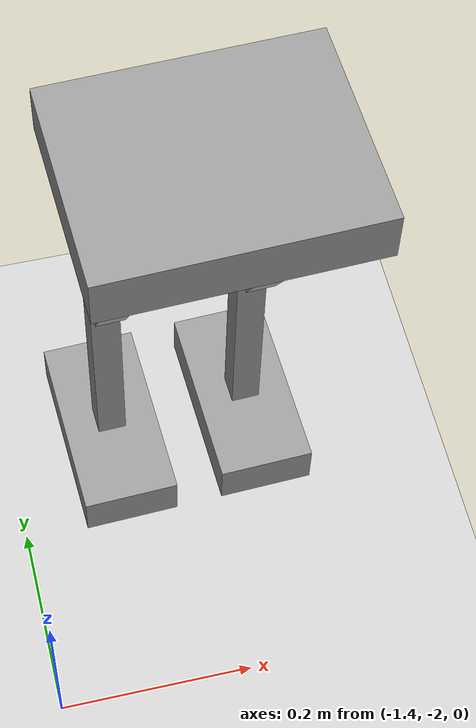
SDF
<sdf version="1.6">
 <world name="default">
  <model name="ground_plane">
   <static>1</static>
   <link name="link">
    <collision name="collision">
     <geometry><plane><normal>0 0 1</normal><size>100 100</size></plane></geometry>
     <surface><friction><ode><mu>100</mu><mu2>50</mu2></ode></friction></surface>
    </collision>
    <visual name="visual">
     <cast_shadows>0</cast_shadows>
     <geometry><plane><normal>0 0 1</normal><size>100 100</size></plane></geometry>
     <material>
      <script><uri>file://media/materials/scripts/gazebo.material</uri><name>Gazebo/Grey</name></script>
     </material>
    </visual>
   </link>
  </model>
  <model name="HumonoidRobot_3">
   <link name="link_0">
    <pose>-0.075081 0.045022 -0.236474 0 -0 0</pose>
    <inertial>
     <mass>1</mass>
     <inertia>
      <ixx>0.166667</ixx>
      <ixy>0</ixy>
      <ixz>0</ixz>
      <iyy>0.166667</iyy>
      <iyz>0</iyz>
      <izz>0.166667</izz>
     </inertia>
    </inertial>
    <visual name="visual">
     <geometry><box><size>0.1 0.2 0.05</size></box></geometry>
     <material>
      <lighting>1</lighting>
      <script><uri>file://media/materials/scripts/gazebo.material</uri><name>Gazebo/Grey</name></script>
      <shader type="pixel"><normal_map>__default__</normal_map></shader>
      <ambient>0.3 0.3 0.3 1</ambient>
      <diffuse>0.7 0.7 0.7 1</diffuse>
      <specular>0.01 0.01 0.01 1</specular>
      <emissive>0 0 0 1</emissive>
     </material>
    </visual>
    <collision name="collision">
     <geometry><box><size>0.1 0.2 0.05</size></box></geometry>
     <surface>
      <friction>
       <ode><mu>1</mu><mu2>1</mu2><fdir1>0 0 0</fdir1><slip1>0</slip1><slip2>0</slip2></ode>
       <torsional>
        <coefficient>1</coefficient>
        <patch_radius>0</patch_radius>
        <surface_radius>0</surface_radius>
        <use_patch_radius>1</use_patch_radius>
        <ode><slip>0</slip></ode>
       </torsional>
      </friction>
      <bounce><restitution_coefficient>0</restitution_coefficient><threshold>1e+06</threshold></bounce>
      <contact>
       <collide_without_contact>0</collide_without_contact>
       <collide_without_contact_bitmask>1</collide_without_contact_bitmask>
       <collide_bitmask>1</collide_bitmask>
       <ode>
        <soft_cfm>0</soft_cfm>
        <soft_erp>0.2</soft_erp>
        <kp>1e+13</kp>
        <kd>1</kd>
        <max_vel>0.01</max_vel>
        <min_depth>0</min_depth>
       </ode>
       <bullet>
        <split_impulse>1</split_impulse>
        <split_impulse_penetration_threshold>-0.01</split_impulse_penetration_threshold>
        <soft_cfm>0</soft_cfm>
        <soft_erp>0.2</soft_erp>
        <kp>1e+13</kp>
        <kd>1</kd>
       </bullet>
      </contact>
     </surface>
    </collision>
   </link>
   <link name="link_0_clone">
    <pose>0.074919 0.045022 -0.236474 0 -0 0</pose>
    <inertial>
     <mass>1</mass>
     <inertia>
      <ixx>0.166667</ixx>
      <ixy>0</ixy>
      <ixz>0</ixz>
      <iyy>0.166667</iyy>
      <iyz>0</iyz>
      <izz>0.166667</izz>
     </inertia>
    </inertial>
    <visual name="visual">
     <geometry><box><size>0.1 0.2 0.05</size></box></geometry>
     <material>
      <lighting>1</lighting>
      <script><uri>file://media/materials/scripts/gazebo.material</uri><name>Gazebo/Grey</name></script>
      <shader type="pixel"><normal_map>__default__</normal_map></shader>
      <ambient>0.3 0.3 0.3 1</ambient>
      <diffuse>0.7 0.7 0.7 1</diffuse>
      <specular>0.01 0.01 0.01 1</specular>
      <emissive>0 0 0 1</emissive>
     </material>
    </visual>
    <collision name="collision">
     <geometry><box><size>0.1 0.2 0.05</size></box></geometry>
     <surface>
      <friction>
       <ode><mu>1</mu><mu2>1</mu2><fdir1>0 0 0</fdir1><slip1>0</slip1><slip2>0</slip2></ode>
       <torsional>
        <coefficient>1</coefficient>
        <patch_radius>0</patch_radius>
        <surface_radius>0</surface_radius>
        <use_patch_radius>1</use_patch_radius>
        <ode><slip>0</slip></ode>
       </torsional>
      </friction>
      <bounce><restitution_coefficient>0</restitution_coefficient><threshold>1e+06</threshold></bounce>
      <contact>
       <collide_without_contact>0</collide_without_contact>
       <collide_without_contact_bitmask>1</collide_without_contact_bitmask>
       <collide_bitmask>1</collide_bitmask>
       <ode>
        <soft_cfm>0</soft_cfm>
        <soft_erp>0.2</soft_erp>
        <kp>1e+13</kp>
        <kd>1</kd>
        <max_vel>0.01</max_vel>
        <min_depth>0</min_depth>
       </ode>
       <bullet>
        <split_impulse>1</split_impulse>
        <split_impulse_penetration_threshold>-0.01</split_impulse_penetration_threshold>
        <soft_cfm>0</soft_cfm>
        <soft_erp>0.2</soft_erp>
        <kp>1e+13</kp>
        <kd>1</kd>
       </bullet>
      </contact>
     </surface>
    </collision>
   </link>
   <link name="link_0_clone_0">
    <pose>0.000486 -0.069978 0.341184 0 -0 0</pose>
    <inertial>
     <mass>1</mass>
     <inertia>
      <ixx>0.166667</ixx>
      <ixy>0</ixy>
      <ixz>0</ixz>
      <iyy>0.166667</iyy>
      <iyz>0</iyz>
      <izz>0.166667</izz>
     </inertia>
    </inertial>
    <visual name="visual">
     <geometry><box><size>0.25 0.2 0.05</size></box></geometry>
     <material>
      <lighting>1</lighting>
      <script><uri>file://media/materials/scripts/gazebo.material</uri><name>Gazebo/Grey</name></script>
      <shader type="pixel"><normal_map>__default__</normal_map></shader>
      <ambient>0.3 0.3 0.3 1</ambient>
      <diffuse>0.7 0.7 0.7 1</diffuse>
      <specular>0.01 0.01 0.01 1</specular>
      <emissive>0 0 0 1</emissive>
     </material>
    </visual>
    <collision name="collision">
     <geometry><box><size>0.25 0.2 0.05</size></box></geometry>
     <surface>
      <friction>
       <ode><mu>1</mu><mu2>1</mu2><fdir1>0 0 0</fdir1><slip1>0</slip1><slip2>0</slip2></ode>
       <torsional>
        <coefficient>1</coefficient>
        <patch_radius>0</patch_radius>
        <surface_radius>0</surface_radius>
        <use_patch_radius>1</use_patch_radius>
        <ode><slip>0</slip></ode>
       </torsional>
      </friction>
      <bounce><restitution_coefficient>0</restitution_coefficient><threshold>1e+06</threshold></bounce>
      <contact>
       <collide_without_contact>0</collide_without_contact>
       <collide_without_contact_bitmask>1</collide_without_contact_bitmask>
       <collide_bitmask>1</collide_bitmask>
       <ode>
        <soft_cfm>0</soft_cfm>
        <soft_erp>0.2</soft_erp>
        <kp>1e+13</kp>
        <kd>1</kd>
        <max_vel>0.01</max_vel>
        <min_depth>0</min_depth>
       </ode>
       <bullet>
        <split_impulse>1</split_impulse>
        <split_impulse_penetration_threshold>-0.01</split_impulse_penetration_threshold>
        <soft_cfm>0</soft_cfm>
        <soft_erp>0.2</soft_erp>
        <kp>1e+13</kp>
        <kd>1</kd>
       </bullet>
      </contact>
     </surface>
    </collision>
   </link>
   <link name="link_1">
    <pose>-0.075081 0.045022 -0.111474 0 -0 0</pose>
    <inertial>
     <mass>1</mass>
     <inertia>
      <ixx>0.166667</ixx>
      <ixy>0</ixy>
      <ixz>0</ixz>
      <iyy>0.166667</iyy>
      <iyz>0</iyz>
      <izz>0.166667</izz>
     </inertia>
    </inertial>
    <visual name="visual">
     <geometry><box><size>0.03 0.03 0.3</size></box></geometry>
     <material>
      <lighting>1</lighting>
      <script><uri>file://media/materials/scripts/gazebo.material</uri><name>Gazebo/Grey</name></script>
      <shader type="pixel"><normal_map>__default__</normal_map></shader>
      <ambient>0.3 0.3 0.3 1</ambient>
      <diffuse>0.7 0.7 0.7 1</diffuse>
      <specular>0.01 0.01 0.01 1</specular>
      <emissive>0 0 0 1</emissive>
     </material>
    </visual>
    <collision name="collision">
     <geometry><box><size>0.03 0.03 0.3</size></box></geometry>
     <surface>
      <friction>
       <ode><mu>1</mu><mu2>1</mu2><fdir1>0 0 0</fdir1><slip1>0</slip1><slip2>0</slip2></ode>
       <torsional>
        <coefficient>1</coefficient>
        <patch_radius>0</patch_radius>
        <surface_radius>0</surface_radius>
        <use_patch_radius>1</use_patch_radius>
        <ode><slip>0</slip></ode>
       </torsional>
      </friction>
      <bounce><restitution_coefficient>0</restitution_coefficient><threshold>1e+06</threshold></bounce>
      <contact>
       <collide_without_contact>0</collide_without_contact>
       <collide_without_contact_bitmask>1</collide_without_contact_bitmask>
       <collide_bitmask>1</collide_bitmask>
       <ode>
        <soft_cfm>0</soft_cfm>
        <soft_erp>0.2</soft_erp>
        <kp>1e+13</kp>
        <kd>1</kd>
        <max_vel>0.01</max_vel>
        <min_depth>0</min_depth>
       </ode>
       <bullet>
        <split_impulse>1</split_impulse>
        <split_impulse_penetration_threshold>-0.01</split_impulse_penetration_threshold>
        <soft_cfm>0</soft_cfm>
        <soft_erp>0.2</soft_erp>
        <kp>1e+13</kp>
        <kd>1</kd>
       </bullet>
      </contact>
     </surface>
    </collision>
   </link>
   <link name="link_1_clone">
    <pose>0.074919 0.045022 -0.111474 0 -0 0</pose>
    <inertial>
     <mass>1</mass>
     <inertia>
      <ixx>0.166667</ixx>
      <ixy>0</ixy>
      <ixz>0</ixz>
      <iyy>0.166667</iyy>
      <iyz>0</iyz>
      <izz>0.166667</izz>
     </inertia>
    </inertial>
    <visual name="visual">
     <geometry><box><size>0.03 0.03 0.3</size></box></geometry>
     <material>
      <lighting>1</lighting>
      <script><uri>file://media/materials/scripts/gazebo.material</uri><name>Gazebo/Grey</name></script>
      <shader type="pixel"><normal_map>__default__</normal_map></shader>
      <ambient>0.3 0.3 0.3 1</ambient>
      <diffuse>0.7 0.7 0.7 1</diffuse>
      <specular>0.01 0.01 0.01 1</specular>
      <emissive>0 0 0 1</emissive>
     </material>
    </visual>
    <collision name="collision">
     <geometry><box><size>0.03 0.03 0.3</size></box></geometry>
     <surface>
      <friction>
       <ode><mu>1</mu><mu2>1</mu2><fdir1>0 0 0</fdir1><slip1>0</slip1><slip2>0</slip2></ode>
       <torsional>
        <coefficient>1</coefficient>
        <patch_radius>0</patch_radius>
        <surface_radius>0</surface_radius>
        <use_patch_radius>1</use_patch_radius>
        <ode><slip>0</slip></ode>
       </torsional>
      </friction>
      <bounce><restitution_coefficient>0</restitution_coefficient><threshold>1e+06</threshold></bounce>
      <contact>
       <collide_without_contact>0</collide_without_contact>
       <collide_without_contact_bitmask>1</collide_without_contact_bitmask>
       <collide_bitmask>1</collide_bitmask>
       <ode>
        <soft_cfm>0</soft_cfm>
        <soft_erp>0.2</soft_erp>
        <kp>1e+13</kp>
        <kd>1</kd>
        <max_vel>0.01</max_vel>
        <min_depth>0</min_depth>
       </ode>
       <bullet>
        <split_impulse>1</split_impulse>
        <split_impulse_penetration_threshold>-0.01</split_impulse_penetration_threshold>
        <soft_cfm>0</soft_cfm>
        <soft_erp>0.2</soft_erp>
        <kp>1e+13</kp>
        <kd>1</kd>
       </bullet>
      </contact>
     </surface>
    </collision>
   </link>
   <link name="link_1_clone_0">
    <pose>-0.075081 -0.055055 0.177355 0.5 -0 0</pose>
    <inertial>
     <mass>1</mass>
     <inertia>
      <ixx>0.166667</ixx>
      <ixy>0</ixy>
      <ixz>0</ixz>
      <iyy>0.166667</iyy>
      <iyz>0</iyz>
      <izz>0.166667</izz>
     </inertia>
    </inertial>
    <visual name="visual">
     <geometry><box><size>0.03 0.03 0.3</size></box></geometry>
     <material>
      <lighting>1</lighting>
      <script><uri>file://media/materials/scripts/gazebo.material</uri><name>Gazebo/Grey</name></script>
      <shader type="pixel"><normal_map>__default__</normal_map></shader>
      <ambient>0.3 0.3 0.3 1</ambient>
      <diffuse>0.7 0.7 0.7 1</diffuse>
      <specular>0.01 0.01 0.01 1</specular>
      <emissive>0 0 0 1</emissive>
     </material>
    </visual>
    <collision name="collision">
     <geometry><box><size>0.03 0.03 0.3</size></box></geometry>
     <surface>
      <friction>
       <ode><mu>1</mu><mu2>1</mu2><fdir1>0 0 0</fdir1><slip1>0</slip1><slip2>0</slip2></ode>
       <torsional>
        <coefficient>1</coefficient>
        <patch_radius>0</patch_radius>
        <surface_radius>0</surface_radius>
        <use_patch_radius>1</use_patch_radius>
        <ode><slip>0</slip></ode>
       </torsional>
      </friction>
      <bounce><restitution_coefficient>0</restitution_coefficient><threshold>1e+06</threshold></bounce>
      <contact>
       <collide_without_contact>0</collide_without_contact>
       <collide_without_contact_bitmask>1</collide_without_contact_bitmask>
       <collide_bitmask>1</collide_bitmask>
       <ode>
        <soft_cfm>0</soft_cfm>
        <soft_erp>0.2</soft_erp>
        <kp>1e+13</kp>
        <kd>1</kd>
        <max_vel>0.01</max_vel>
        <min_depth>0</min_depth>
       </ode>
       <bullet>
        <split_impulse>1</split_impulse>
        <split_impulse_penetration_threshold>-0.01</split_impulse_penetration_threshold>
        <soft_cfm>0</soft_cfm>
        <soft_erp>0.2</soft_erp>
        <kp>1e+13</kp>
        <kd>1</kd>
       </bullet>
      </contact>
     </surface>
    </collision>
   </link>
   <link name="link_1_clone_1">
    <pose>0.074919 -0.055055 0.177355 0.5 -0 0</pose>
    <inertial>
     <mass>1</mass>
     <inertia>
      <ixx>0.166667</ixx>
      <ixy>0</ixy>
      <ixz>0</ixz>
      <iyy>0.166667</iyy>
      <iyz>0</iyz>
      <izz>0.166667</izz>
     </inertia>
    </inertial>
    <visual name="visual">
     <geometry><box><size>0.03 0.03 0.3</size></box></geometry>
     <material>
      <lighting>1</lighting>
      <script><uri>file://media/materials/scripts/gazebo.material</uri><name>Gazebo/Grey</name></script>
      <shader type="pixel"><normal_map>__default__</normal_map></shader>
      <ambient>0.3 0.3 0.3 1</ambient>
      <diffuse>0.7 0.7 0.7 1</diffuse>
      <specular>0.01 0.01 0.01 1</specular>
      <emissive>0 0 0 1</emissive>
     </material>
    </visual>
    <collision name="collision">
     <geometry><box><size>0.03 0.03 0.3</size></box></geometry>
     <surface>
      <friction>
       <ode><mu>1</mu><mu2>1</mu2><fdir1>0 0 0</fdir1><slip1>0</slip1><slip2>0</slip2></ode>
       <torsional>
        <coefficient>1</coefficient>
        <patch_radius>0</patch_radius>
        <surface_radius>0</surface_radius>
        <use_patch_radius>1</use_patch_radius>
        <ode><slip>0</slip></ode>
       </torsional>
      </friction>
      <bounce><restitution_coefficient>0</restitution_coefficient><threshold>1e+06</threshold></bounce>
      <contact>
       <collide_without_contact>0</collide_without_contact>
       <collide_without_contact_bitmask>1</collide_without_contact_bitmask>
       <collide_bitmask>1</collide_bitmask>
       <ode>
        <soft_cfm>0</soft_cfm>
        <soft_erp>0.2</soft_erp>
        <kp>1e+13</kp>
        <kd>1</kd>
        <max_vel>0.01</max_vel>
        <min_depth>0</min_depth>
       </ode>
       <bullet>
        <split_impulse>1</split_impulse>
        <split_impulse_penetration_threshold>-0.01</split_impulse_penetration_threshold>
        <soft_cfm>0</soft_cfm>
        <soft_erp>0.2</soft_erp>
        <kp>1e+13</kp>
        <kd>1</kd>
       </bullet>
      </contact>
     </surface>
    </collision>
   </link>
   <joint name="link_0_JOINT_0" type="fixed">
    <parent>link_0</parent>
    <child>link_1</child>
    <physics>
     <ode><limit><cfm>0</cfm><erp>0.2</erp></limit><suspension><cfm>0</cfm><erp>0.2</erp></suspension></ode>
    </physics>
   </joint>
   <joint name="link_0_clone_JOINT_1" type="fixed">
    <parent>link_0_clone</parent>
    <child>link_1_clone</child>
    <physics>
     <ode><limit><cfm>0</cfm><erp>0.2</erp></limit><suspension><cfm>0</cfm><erp>0.2</erp></suspension></ode>
    </physics>
   </joint>
   <joint name="link_1_JOINT_2" type="fixed">
    <parent>link_1</parent>
    <child>link_1_clone_0</child>
    <physics>
     <ode><limit><cfm>0</cfm><erp>0.2</erp></limit><suspension><cfm>0</cfm><erp>0.2</erp></suspension></ode>
    </physics>
   </joint>
   <joint name="link_1_clone_0_JOINT_4" type="fixed">
    <parent>link_1_clone_0</parent>
    <child>link_0_clone_0</child>
    <physics>
     <ode><limit><cfm>0</cfm><erp>0.2</erp></limit><suspension><cfm>0</cfm><erp>0.2</erp></suspension></ode>
    </physics>
   </joint>
   <joint name="link_1_clone_1_JOINT_5" type="fixed">
    <parent>link_1_clone_1</parent>
    <child>link_0_clone_0</child>
    <physics>
     <ode><limit><cfm>0</cfm><erp>0.2</erp></limit><suspension><cfm>0</cfm><erp>0.2</erp></suspension></ode>
    </physics>
   </joint>
   <joint name="link_1_clone_JOINT_3" type="revolute">
    <parent>link_1_clone</parent>
    <child>link_1_clone_1</child>
    <axis>
     <xyz>1 0 0</xyz>
     <use_parent_model_frame>0</use_parent_model_frame>
     <limit>
      <lower>-1.79769e+308</lower>
      <upper>1.79769e+308</upper>
      <effort>-1</effort>
      <velocity>-1</velocity>
     </limit>
     <dynamics>
      <spring_reference>0</spring_reference>
      <spring_stiffness>0</spring_stiffness>
      <damping>0</damping>
     </dynamics>
    </axis>
    <physics>
     <ode><limit><cfm>0</cfm><erp>0.2</erp></limit><suspension><cfm>0</cfm><erp>0.2</erp></suspension></ode>
    </physics>
   </joint>
   <static>0</static>
   <pose>-1.21091 -1.74433 0.261475 2e-06 -5e-06 0.039843</pose>
  </model>
 </world>
</sdf>
